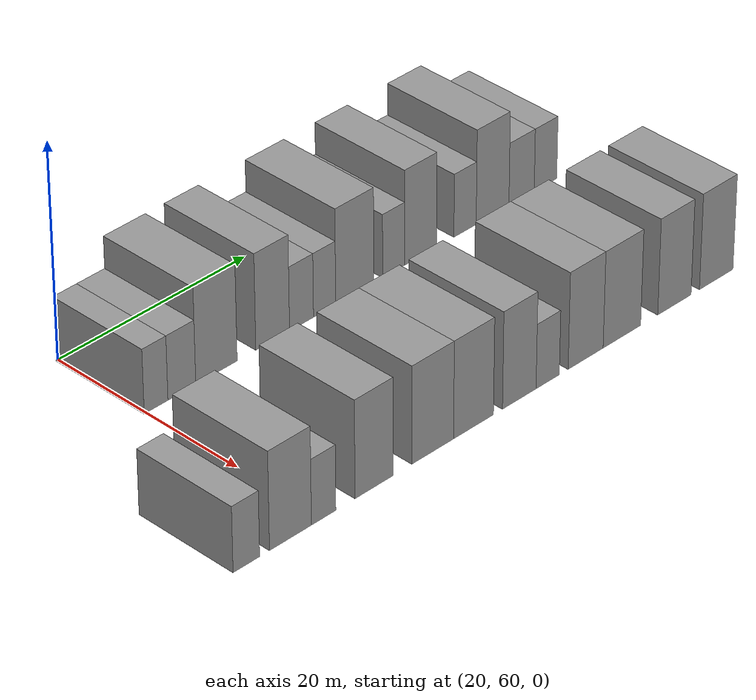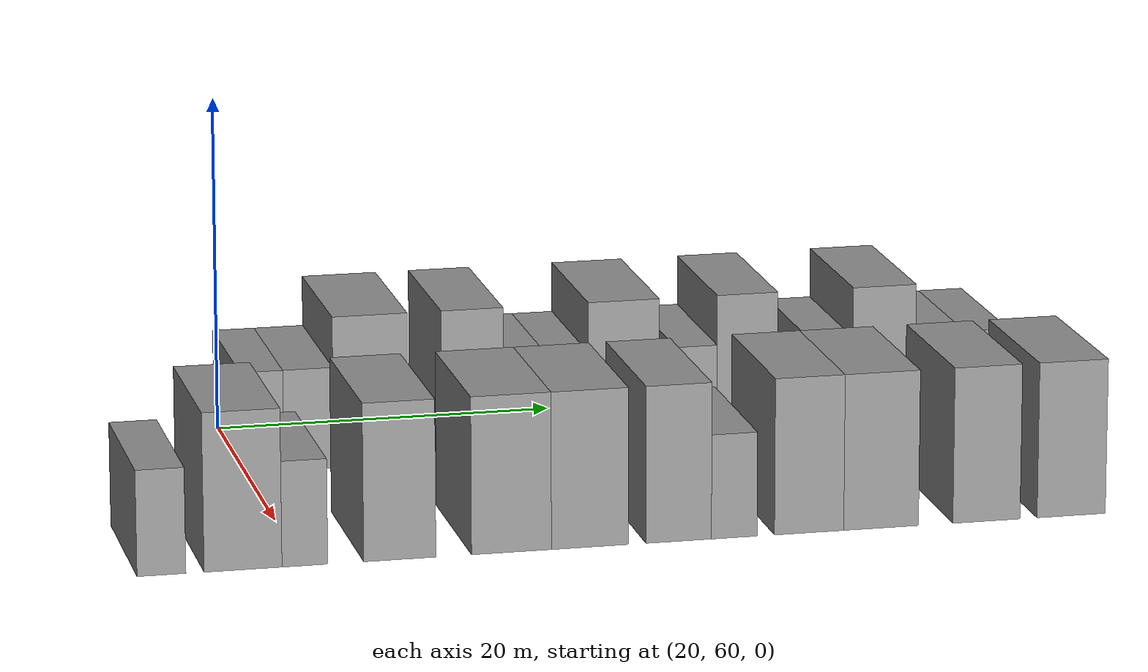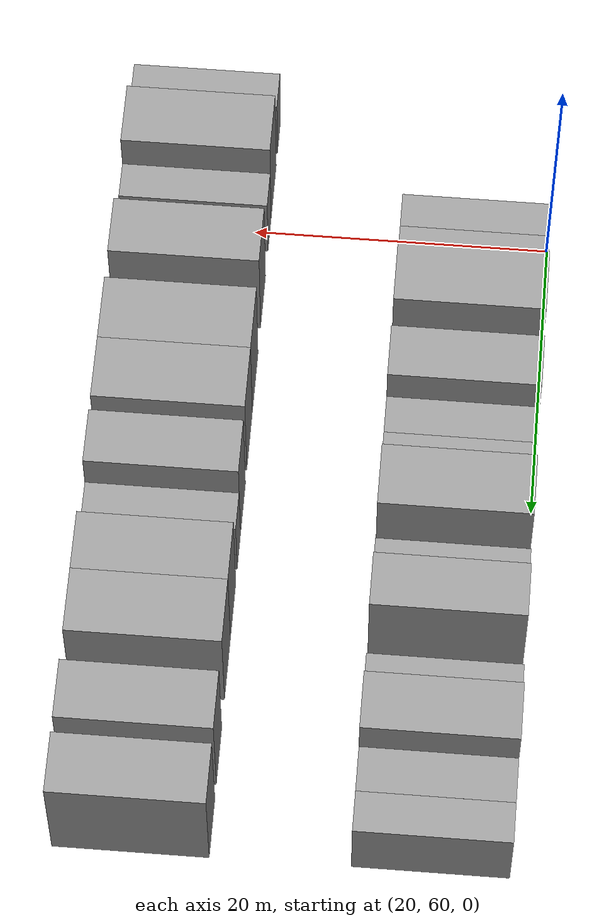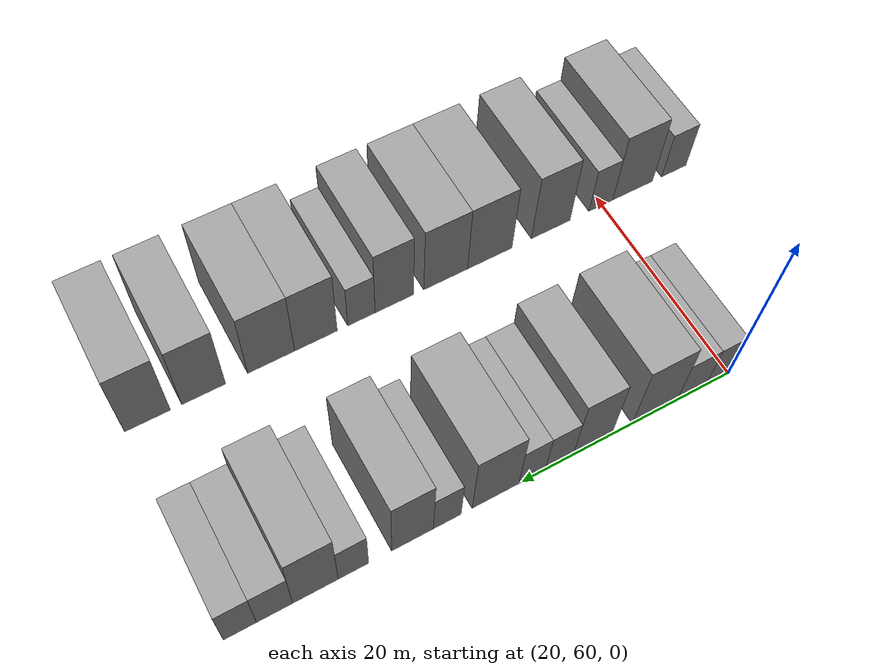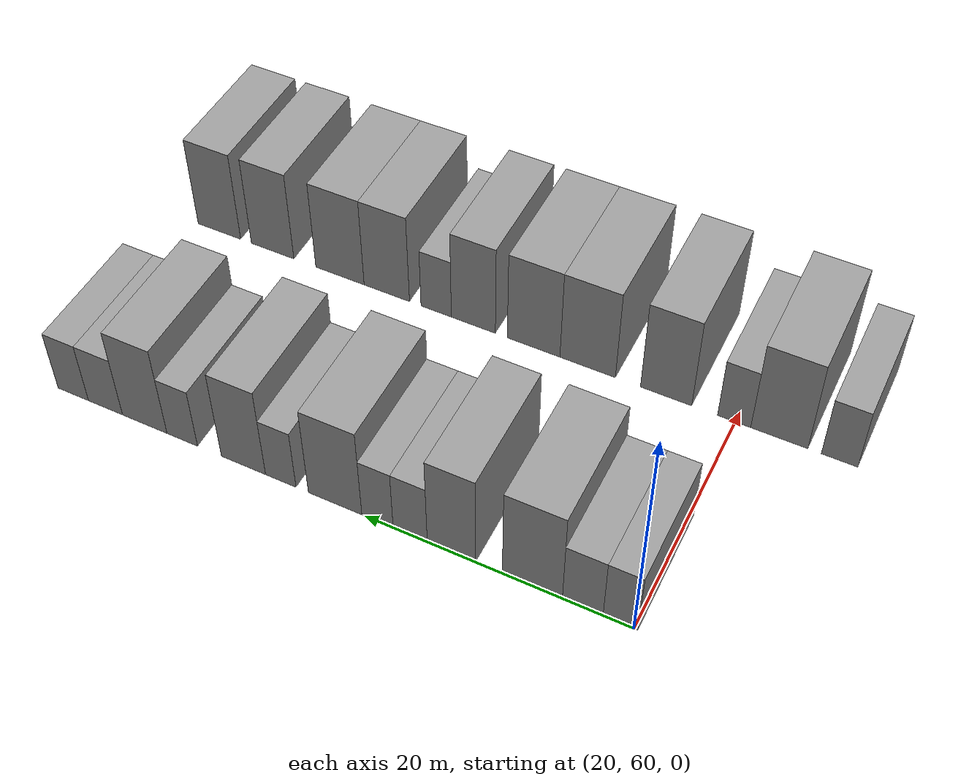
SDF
<sdf version="1.6">
 <world name="default">
  <model name="building_64">
   <static>1</static>
   <pose>25.0000 60.9998 0 0.000000 0.000000 0.000000</pose>
   <link name="link">
    <pose>0 0 3.00 0 0 0</pose>
    <collision name="collision"><geometry><box><size>10.0000 2.4758 6.0000</size></box></geometry></collision>
    <visual name="visual">
     <cast_shadows>0</cast_shadows>
     <geometry><box><size>10.0000 2.4758 6.0000</size></box></geometry>
     <material>
      <script>
       <uri>model://grey_wall/materials/scripts</uri>
       <uri>model://grey_wall/materials/textures</uri>
       <name>vrc/grey_wall</name>
      </script>
     </material>
    </visual>
   </link>
  </model>
  <model name="building_65">
   <static>1</static>
   <pose>25.0000 63.6991 0 0.000000 0.000000 0.000000</pose>
   <link name="link">
    <pose>0 0 3.00 0 0 0</pose>
    <collision name="collision"><geometry><box><size>10.0000 2.9228 6.0000</size></box></geometry></collision>
    <visual name="visual">
     <cast_shadows>0</cast_shadows>
     <geometry><box><size>10.0000 2.9228 6.0000</size></box></geometry>
     <material>
      <script>
       <uri>model://grey_wall/materials/scripts</uri>
       <uri>model://grey_wall/materials/textures</uri>
       <name>vrc/grey_wall</name>
      </script>
     </material>
    </visual>
   </link>
  </model>
  <model name="building_66">
   <static>1</static>
   <pose>25.0000 67.3624 0 0.000000 0.000000 0.000000</pose>
   <link name="link">
    <pose>0 0 4.50 0 0 0</pose>
    <collision name="collision"><geometry><box><size>10.0000 4.4037 9.0000</size></box></geometry></collision>
    <visual name="visual">
     <cast_shadows>0</cast_shadows>
     <geometry><box><size>10.0000 4.4037 9.0000</size></box></geometry>
     <material>
      <script>
       <uri>model://grey_wall/materials/scripts</uri>
       <uri>model://grey_wall/materials/textures</uri>
       <name>vrc/grey_wall</name>
      </script>
     </material>
    </visual>
   </link>
  </model>
  <model name="building_67">
   <static>1</static>
   <pose>25.0000 73.3921 0 0.000000 0.000000 0.000000</pose>
   <link name="link">
    <pose>0 0 4.50 0 0 0</pose>
    <collision name="collision"><geometry><box><size>10.0000 3.6559 9.0000</size></box></geometry></collision>
    <visual name="visual">
     <cast_shadows>0</cast_shadows>
     <geometry><box><size>10.0000 3.6559 9.0000</size></box></geometry>
     <material>
      <script>
       <uri>model://grey_wall/materials/scripts</uri>
       <uri>model://grey_wall/materials/textures</uri>
       <name>vrc/grey_wall</name>
      </script>
     </material>
    </visual>
   </link>
  </model>
  <model name="building_68">
   <static>1</static>
   <pose>25.0000 76.5327 0 0.000000 0.000000 0.000000</pose>
   <link name="link">
    <pose>0 0 3.00 0 0 0</pose>
    <collision name="collision"><geometry><box><size>10.0000 2.6252 6.0000</size></box></geometry></collision>
    <visual name="visual">
     <cast_shadows>0</cast_shadows>
     <geometry><box><size>10.0000 2.6252 6.0000</size></box></geometry>
     <material>
      <script>
       <uri>model://grey_wall/materials/scripts</uri>
       <uri>model://grey_wall/materials/textures</uri>
       <name>vrc/grey_wall</name>
      </script>
     </material>
    </visual>
   </link>
  </model>
  <model name="building_69">
   <static>1</static>
   <pose>25.0000 79.0698 0 0.000000 0.000000 0.000000</pose>
   <link name="link">
    <pose>0 0 3.00 0 0 0</pose>
    <collision name="collision"><geometry><box><size>10.0000 2.4490 6.0000</size></box></geometry></collision>
    <visual name="visual">
     <cast_shadows>0</cast_shadows>
     <geometry><box><size>10.0000 2.4490 6.0000</size></box></geometry>
     <material>
      <script>
       <uri>model://grey_wall/materials/scripts</uri>
       <uri>model://grey_wall/materials/textures</uri>
       <name>vrc/grey_wall</name>
      </script>
     </material>
    </visual>
   </link>
  </model>
  <model name="building_70">
   <static>1</static>
   <pose>25.0000 82.4172 0 0.000000 0.000000 0.000000</pose>
   <link name="link">
    <pose>0 0 4.50 0 0 0</pose>
    <collision name="collision"><geometry><box><size>10.0000 4.2457 9.0000</size></box></geometry></collision>
    <visual name="visual">
     <cast_shadows>0</cast_shadows>
     <geometry><box><size>10.0000 4.2457 9.0000</size></box></geometry>
     <material>
      <script>
       <uri>model://grey_wall/materials/scripts</uri>
       <uri>model://grey_wall/materials/textures</uri>
       <name>vrc/grey_wall</name>
      </script>
     </material>
    </visual>
   </link>
  </model>
  <model name="building_71">
   <static>1</static>
   <pose>25.0000 86.7797 0 0.000000 0.000000 0.000000</pose>
   <link name="link">
    <pose>0 0 3.00 0 0 0</pose>
    <collision name="collision"><geometry><box><size>10.0000 2.4792 6.0000</size></box></geometry></collision>
    <visual name="visual">
     <cast_shadows>0</cast_shadows>
     <geometry><box><size>10.0000 2.4792 6.0000</size></box></geometry>
     <material>
      <script>
       <uri>model://grey_wall/materials/scripts</uri>
       <uri>model://grey_wall/materials/textures</uri>
       <name>vrc/grey_wall</name>
      </script>
     </material>
    </visual>
   </link>
  </model>
  <model name="building_72">
   <static>1</static>
   <pose>25.0000 89.8450 0 0.000000 0.000000 0.000000</pose>
   <link name="link">
    <pose>0 0 4.50 0 0 0</pose>
    <collision name="collision"><geometry><box><size>10.0000 3.6514 9.0000</size></box></geometry></collision>
    <visual name="visual">
     <cast_shadows>0</cast_shadows>
     <geometry><box><size>10.0000 3.6514 9.0000</size></box></geometry>
     <material>
      <script>
       <uri>model://grey_wall/materials/scripts</uri>
       <uri>model://grey_wall/materials/textures</uri>
       <name>vrc/grey_wall</name>
      </script>
     </material>
    </visual>
   </link>
  </model>
  <model name="building_73">
   <static>1</static>
   <pose>25.0000 94.9658 0 0.000000 0.000000 0.000000</pose>
   <link name="link">
    <pose>0 0 3.00 0 0 0</pose>
    <collision name="collision"><geometry><box><size>10.0000 2.5901 6.0000</size></box></geometry></collision>
    <visual name="visual">
     <cast_shadows>0</cast_shadows>
     <geometry><box><size>10.0000 2.5901 6.0000</size></box></geometry>
     <material>
      <script>
       <uri>model://grey_wall/materials/scripts</uri>
       <uri>model://grey_wall/materials/textures</uri>
       <name>vrc/grey_wall</name>
      </script>
     </material>
    </visual>
   </link>
  </model>
  <model name="building_74">
   <static>1</static>
   <pose>25.0000 98.1801 0 0.000000 0.000000 0.000000</pose>
   <link name="link">
    <pose>0 0 4.50 0 0 0</pose>
    <collision name="collision"><geometry><box><size>10.0000 3.8386 9.0000</size></box></geometry></collision>
    <visual name="visual">
     <cast_shadows>0</cast_shadows>
     <geometry><box><size>10.0000 3.8386 9.0000</size></box></geometry>
     <material>
      <script>
       <uri>model://grey_wall/materials/scripts</uri>
       <uri>model://grey_wall/materials/textures</uri>
       <name>vrc/grey_wall</name>
      </script>
     </material>
    </visual>
   </link>
  </model>
  <model name="building_75">
   <static>1</static>
   <pose>25.0000 101.5952 0 0.000000 0.000000 0.000000</pose>
   <link name="link">
    <pose>0 0 3.00 0 0 0</pose>
    <collision name="collision"><geometry><box><size>10.0000 2.9917 6.0000</size></box></geometry></collision>
    <visual name="visual">
     <cast_shadows>0</cast_shadows>
     <geometry><box><size>10.0000 2.9917 6.0000</size></box></geometry>
     <material>
      <script>
       <uri>model://grey_wall/materials/scripts</uri>
       <uri>model://grey_wall/materials/textures</uri>
       <name>vrc/grey_wall</name>
      </script>
     </material>
    </visual>
   </link>
  </model>
  <model name="building_76">
   <static>1</static>
   <pose>25.0000 104.4360 0 0.000000 0.000000 0.000000</pose>
   <link name="link">
    <pose>0 0 3.00 0 0 0</pose>
    <collision name="collision"><geometry><box><size>10.0000 2.6897 6.0000</size></box></geometry></collision>
    <visual name="visual">
     <cast_shadows>0</cast_shadows>
     <geometry><box><size>10.0000 2.6897 6.0000</size></box></geometry>
     <material>
      <script>
       <uri>model://grey_wall/materials/scripts</uri>
       <uri>model://grey_wall/materials/textures</uri>
       <name>vrc/grey_wall</name>
      </script>
     </material>
    </visual>
   </link>
  </model>
  <model name="building_162">
   <static>1</static>
   <pose>44.0000 52.2168 0 0.000000 0.000000 0.000000</pose>
   <link name="link">
    <pose>0 0 3.00 0 0 0</pose>
    <collision name="collision"><geometry><box><size>10.0000 2.6838 6.0000</size></box></geometry></collision>
    <visual name="visual">
     <cast_shadows>0</cast_shadows>
     <geometry><box><size>10.0000 2.6838 6.0000</size></box></geometry>
     <material>
      <script>
       <uri>model://grey_wall/materials/scripts</uri>
       <uri>model://grey_wall/materials/textures</uri>
       <name>vrc/grey_wall</name>
      </script>
     </material>
    </visual>
   </link>
  </model>
  <model name="building_163">
   <static>1</static>
   <pose>44.0000 56.7093 0 0.000000 0.000000 0.000000</pose>
   <link name="link">
    <pose>0 0 4.50 0 0 0</pose>
    <collision name="collision"><geometry><box><size>10.0000 4.3012 9.0000</size></box></geometry></collision>
    <visual name="visual">
     <cast_shadows>0</cast_shadows>
     <geometry><box><size>10.0000 4.3012 9.0000</size></box></geometry>
     <material>
      <script>
       <uri>model://grey_wall/materials/scripts</uri>
       <uri>model://grey_wall/materials/textures</uri>
       <name>vrc/grey_wall</name>
      </script>
     </material>
    </visual>
   </link>
  </model>
  <model name="building_164">
   <static>1</static>
   <pose>44.0000 60.1287 0 0.000000 0.000000 0.000000</pose>
   <link name="link">
    <pose>0 0 3.00 0 0 0</pose>
    <collision name="collision"><geometry><box><size>10.0000 2.5376 6.0000</size></box></geometry></collision>
    <visual name="visual">
     <cast_shadows>0</cast_shadows>
     <geometry><box><size>10.0000 2.5376 6.0000</size></box></geometry>
     <material>
      <script>
       <uri>model://grey_wall/materials/scripts</uri>
       <uri>model://grey_wall/materials/textures</uri>
       <name>vrc/grey_wall</name>
      </script>
     </material>
    </visual>
   </link>
  </model>
  <model name="building_165">
   <static>1</static>
   <pose>44.0000 65.4118 0 0.000000 0.000000 0.000000</pose>
   <link name="link">
    <pose>0 0 4.50 0 0 0</pose>
    <collision name="collision"><geometry><box><size>10.0000 4.0286 9.0000</size></box></geometry></collision>
    <visual name="visual">
     <cast_shadows>0</cast_shadows>
     <geometry><box><size>10.0000 4.0286 9.0000</size></box></geometry>
     <material>
      <script>
       <uri>model://grey_wall/materials/scripts</uri>
       <uri>model://grey_wall/materials/textures</uri>
       <name>vrc/grey_wall</name>
      </script>
     </material>
    </visual>
   </link>
  </model>
  <model name="building_166">
   <static>1</static>
   <pose>44.0000 71.6757 0 0.000000 0.000000 0.000000</pose>
   <link name="link">
    <pose>0 0 4.50 0 0 0</pose>
    <collision name="collision"><geometry><box><size>10.0000 4.4992 9.0000</size></box></geometry></collision>
    <visual name="visual">
     <cast_shadows>0</cast_shadows>
     <geometry><box><size>10.0000 4.4992 9.0000</size></box></geometry>
     <material>
      <script>
       <uri>model://grey_wall/materials/scripts</uri>
       <uri>model://grey_wall/materials/textures</uri>
       <name>vrc/grey_wall</name>
      </script>
     </material>
    </visual>
   </link>
  </model>
  <model name="building_167">
   <static>1</static>
   <pose>44.0000 76.1062 0 0.000000 0.000000 0.000000</pose>
   <link name="link">
    <pose>0 0 4.50 0 0 0</pose>
    <collision name="collision"><geometry><box><size>10.0000 4.3618 9.0000</size></box></geometry></collision>
    <visual name="visual">
     <cast_shadows>0</cast_shadows>
     <geometry><box><size>10.0000 4.3618 9.0000</size></box></geometry>
     <material>
      <script>
       <uri>model://grey_wall/materials/scripts</uri>
       <uri>model://grey_wall/materials/textures</uri>
       <name>vrc/grey_wall</name>
      </script>
     </material>
    </visual>
   </link>
  </model>
  <model name="building_168">
   <static>1</static>
   <pose>44.0000 81.1547 0 0.000000 0.000000 0.000000</pose>
   <link name="link">
    <pose>0 0 4.50 0 0 0</pose>
    <collision name="collision"><geometry><box><size>10.0000 3.7352 9.0000</size></box></geometry></collision>
    <visual name="visual">
     <cast_shadows>0</cast_shadows>
     <geometry><box><size>10.0000 3.7352 9.0000</size></box></geometry>
     <material>
      <script>
       <uri>model://grey_wall/materials/scripts</uri>
       <uri>model://grey_wall/materials/textures</uri>
       <name>vrc/grey_wall</name>
      </script>
     </material>
    </visual>
   </link>
  </model>
  <model name="building_169">
   <static>1</static>
   <pose>44.0000 84.3300 0 0.000000 0.000000 0.000000</pose>
   <link name="link">
    <pose>0 0 3.00 0 0 0</pose>
    <collision name="collision"><geometry><box><size>10.0000 2.6152 6.0000</size></box></geometry></collision>
    <visual name="visual">
     <cast_shadows>0</cast_shadows>
     <geometry><box><size>10.0000 2.6152 6.0000</size></box></geometry>
     <material>
      <script>
       <uri>model://grey_wall/materials/scripts</uri>
       <uri>model://grey_wall/materials/textures</uri>
       <name>vrc/grey_wall</name>
      </script>
     </material>
    </visual>
   </link>
  </model>
  <model name="building_170">
   <static>1</static>
   <pose>44.0000 88.6331 0 0.000000 0.000000 0.000000</pose>
   <link name="link">
    <pose>0 0 4.50 0 0 0</pose>
    <collision name="collision"><geometry><box><size>10.0000 3.9911 9.0000</size></box></geometry></collision>
    <visual name="visual">
     <cast_shadows>0</cast_shadows>
     <geometry><box><size>10.0000 3.9911 9.0000</size></box></geometry>
     <material>
      <script>
       <uri>model://grey_wall/materials/scripts</uri>
       <uri>model://grey_wall/materials/textures</uri>
       <name>vrc/grey_wall</name>
      </script>
     </material>
    </visual>
   </link>
  </model>
  <model name="building_171">
   <static>1</static>
   <pose>44.0000 92.7937 0 0.000000 0.000000 0.000000</pose>
   <link name="link">
    <pose>0 0 4.50 0 0 0</pose>
    <collision name="collision"><geometry><box><size>10.0000 4.3300 9.0000</size></box></geometry></collision>
    <visual name="visual">
     <cast_shadows>0</cast_shadows>
     <geometry><box><size>10.0000 4.3300 9.0000</size></box></geometry>
     <material>
      <script>
       <uri>model://grey_wall/materials/scripts</uri>
       <uri>model://grey_wall/materials/textures</uri>
       <name>vrc/grey_wall</name>
      </script>
     </material>
    </visual>
   </link>
  </model>
  <model name="building_172">
   <static>1</static>
   <pose>44.0000 98.9204 0 0.000000 0.000000 0.000000</pose>
   <link name="link">
    <pose>0 0 4.50 0 0 0</pose>
    <collision name="collision"><geometry><box><size>10.0000 3.9235 9.0000</size></box></geometry></collision>
    <visual name="visual">
     <cast_shadows>0</cast_shadows>
     <geometry><box><size>10.0000 3.9235 9.0000</size></box></geometry>
     <material>
      <script>
       <uri>model://grey_wall/materials/scripts</uri>
       <uri>model://grey_wall/materials/textures</uri>
       <name>vrc/grey_wall</name>
      </script>
     </material>
    </visual>
   </link>
  </model>
  <model name="building_173">
   <static>1</static>
   <pose>44.0000 103.8852 0 0.000000 0.000000 0.000000</pose>
   <link name="link">
    <pose>0 0 4.50 0 0 0</pose>
    <collision name="collision"><geometry><box><size>10.0000 4.0060 9.0000</size></box></geometry></collision>
    <visual name="visual">
     <cast_shadows>0</cast_shadows>
     <geometry><box><size>10.0000 4.0060 9.0000</size></box></geometry>
     <material>
      <script>
       <uri>model://grey_wall/materials/scripts</uri>
       <uri>model://grey_wall/materials/textures</uri>
       <name>vrc/grey_wall</name>
      </script>
     </material>
    </visual>
   </link>
  </model>
 </world>
</sdf>
